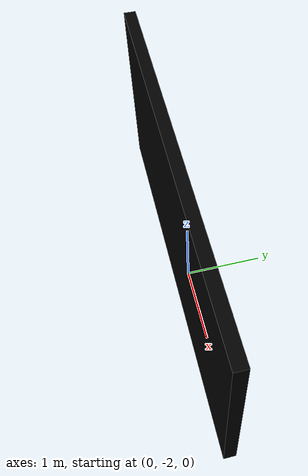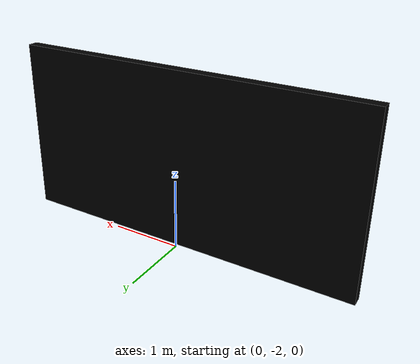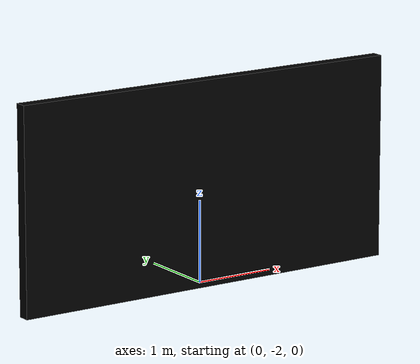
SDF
<?xml version='1.0'?>
<sdf version='1.7'>
  <model name='simpleRoom'>
    <static>true</static>
    <link name='Wall_0'>
      <collision name='Wall_0_Collision'>
        <geometry>
          <box>
            <size>5 0.15 2.5</size>
          </box>
        </geometry>
        <pose>0 0 1.25 0 -0 0</pose>
      </collision>
      <visual name='Wall_0_Visual'>
        <pose>0 0 1.25 0 -0 0</pose>
        <geometry>
          <box>
            <size>5 0.15 2.5</size>
          </box>
        </geometry>
        <material>
          <script>
            <uri>model://simpleRoom/materials/scripts</uri>
            <uri>model://simpleRoom/materials/textures</uri>
            <name>aruco_wall0000</name>
          </script>
          <ambient>0 0 0 1</ambient>
          <diffuse>0 0 0 1</diffuse>
          <specular>0 0 0 0</specular>
          <emissive>1 1 1 1</emissive>
        </material>
        <meta>
          <layer>0</layer>
        </meta>
      </visual>
      <pose>0 -2.1275 0 0 -0 3.14159</pose>
    </link>

  </model>
</sdf>
